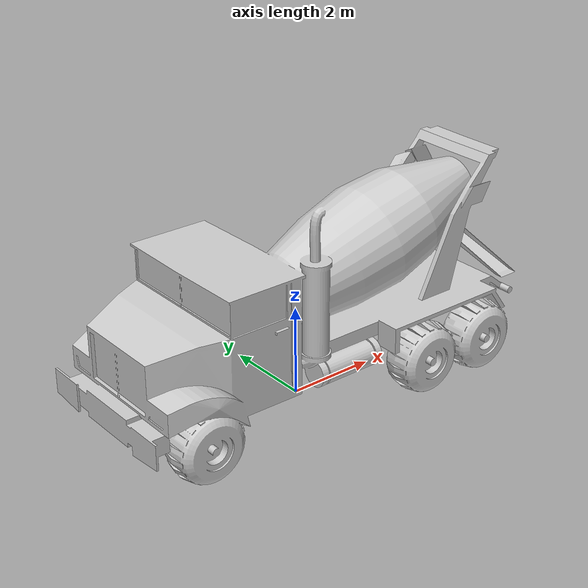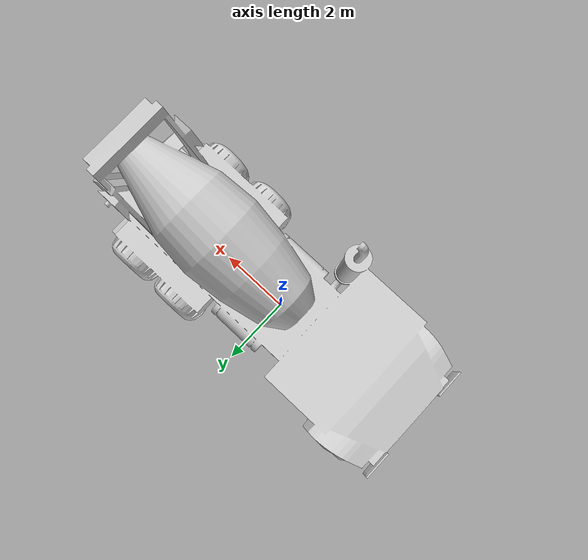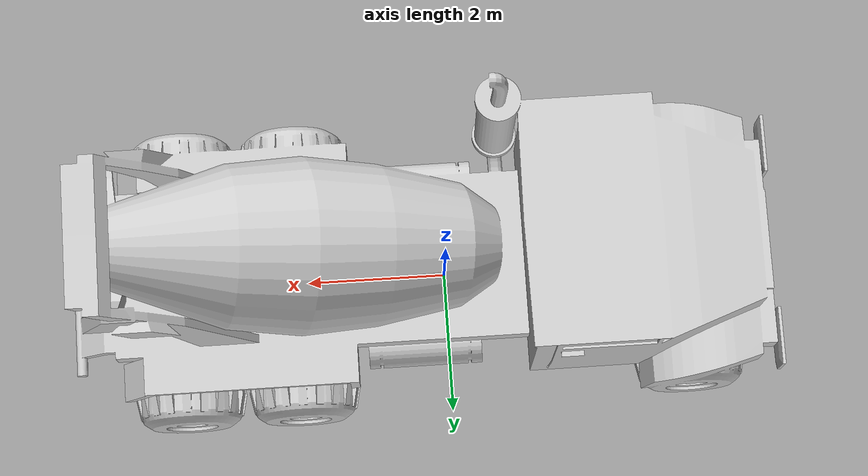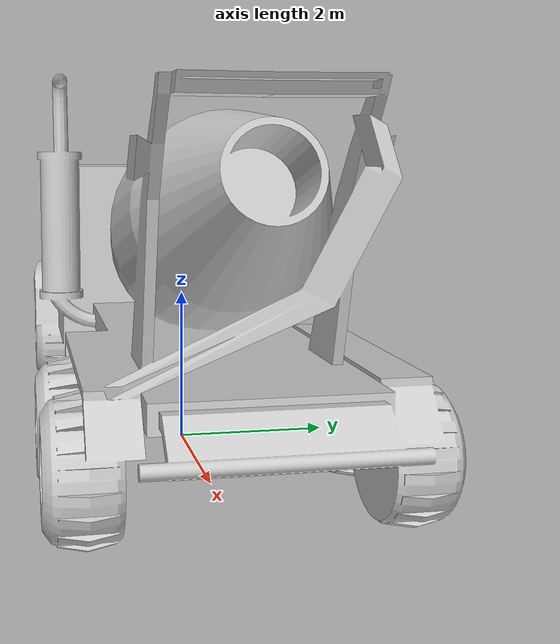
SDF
<?xml version="1.0" ?>
<sdf version="1.6">
  <model name="cementmixer">
    <static>true</static>
    <link name="link">
      <collision name="collision">
        <pose>0 0 0 0 0 0</pose>
        <geometry>
          <mesh>
            <scale>0.5 0.5 0.5</scale>
            <uri>model://cementmixer/meshes/cementmixer.dae</uri>
          </mesh>
        </geometry>
      </collision>
      <visual name="visual">
        <pose>0 0 0 0 0 0</pose>
        <geometry>
          <mesh>
            <scale>0.5 0.5 0.5</scale>
            <uri>model://cementmixer/meshes/cementmixer.dae</uri>
          </mesh>
        </geometry>
      </visual>
    </link>
  </model>
</sdf>
